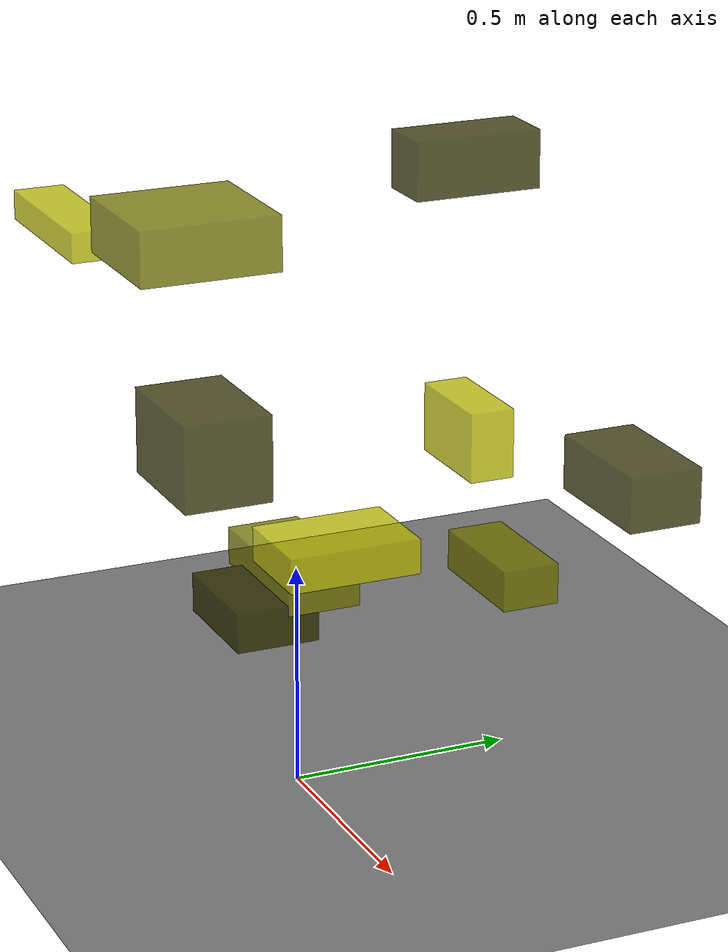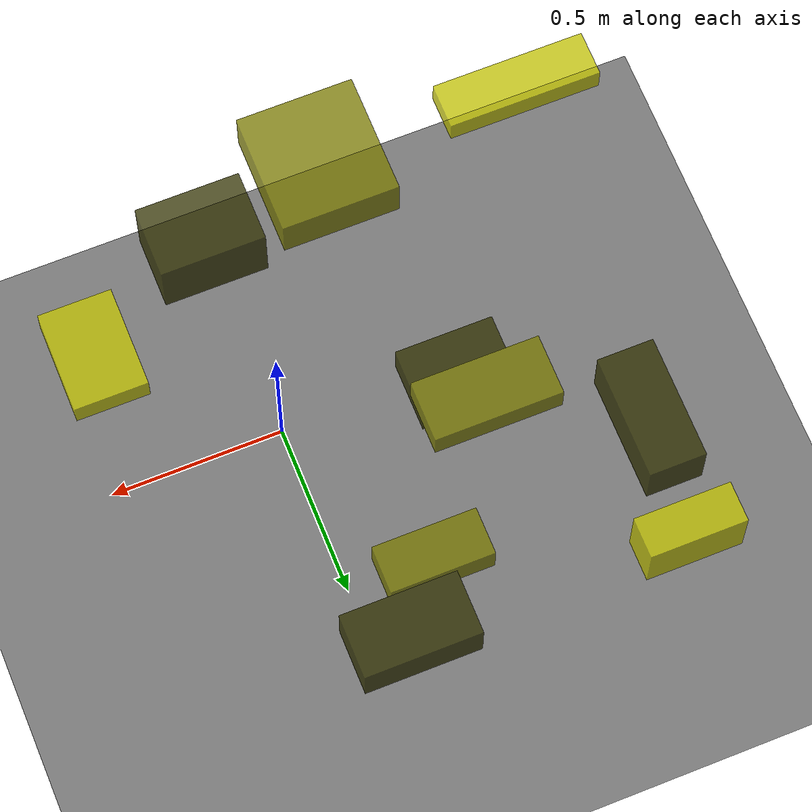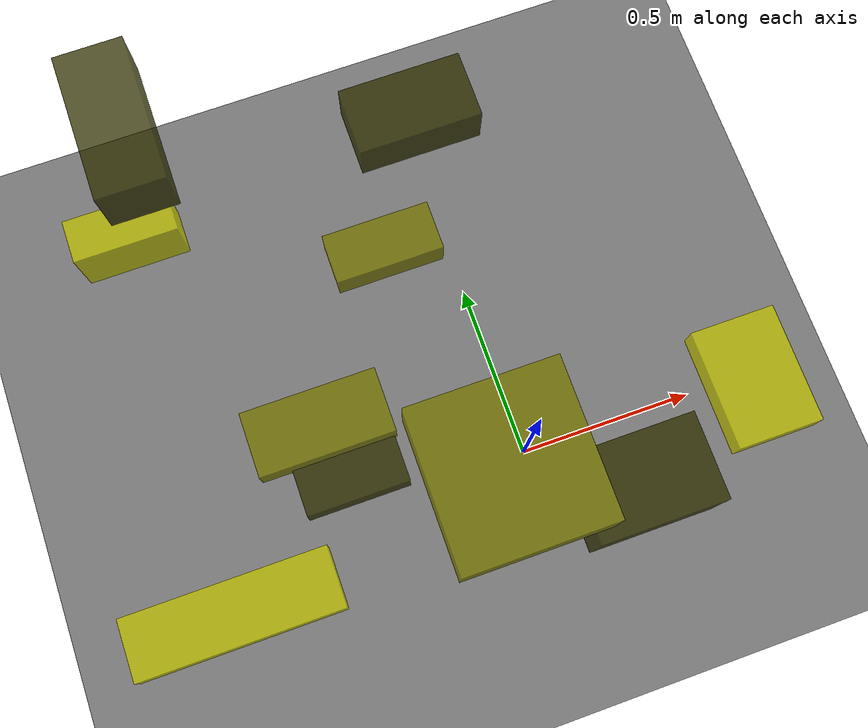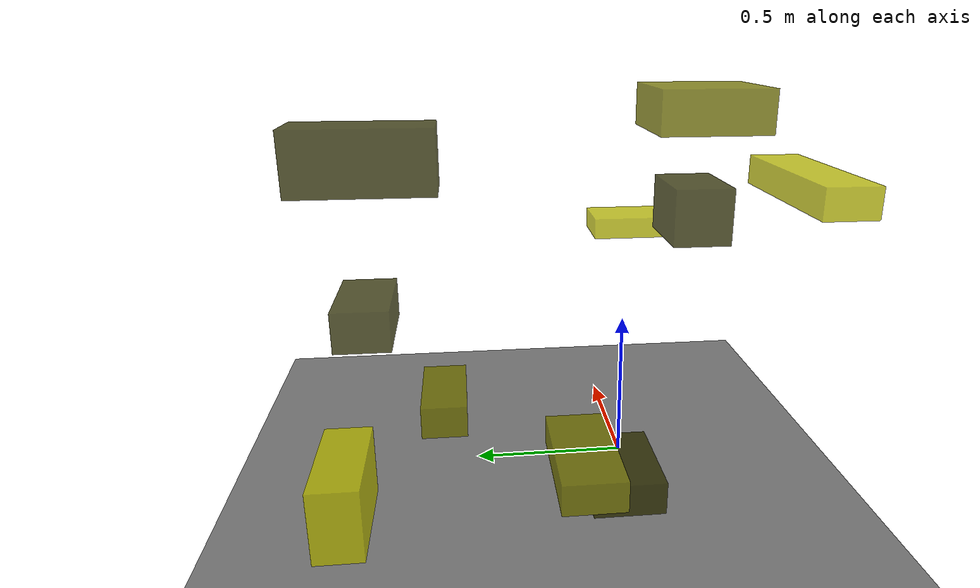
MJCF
<?xml version="1.0"?>
<mujoco model="obstacle_scene">
  <compiler angle="radian" coordinate="local"/>
  <option timestep="0.001" gravity="0 0 -9.81"/>

  <asset>
    <material name="obstacle_mat" rgba="0.8 0.8 0.0 0.8"/>
    <material name="ground_mat" rgba="0.5 0.5 0.5 1"/>
  </asset>

  <worldbody>
    <!-- Ground plane -->
    <geom name="ground" type="plane" size="3 3 0.1" material="ground_mat"/>

    <!-- Obstacles -->
    <body name="obstacle_0" pos="-0.699911 0.735377 1.166976">
      <geom name="obs_0" type="box" size="0.072401 0.158946 0.071290" rgba="0.2 0.2 0.0 0.8"/>
    </body>
    <body name="obstacle_1" pos="-0.205255 0.600951 0.333881">
      <geom name="obs_1" type="box" size="0.147077 0.067709 0.048199" rgba="0.5 0.5 0.0 0.8"/>
    </body>
    <body name="obstacle_2" pos="-0.761740 -0.237081 1.103462">
      <geom name="obs_2" type="box" size="0.201968 0.060256 0.034342" rgba="0.8 0.8 0.0 0.8"/>
    </body>
    <body name="obstacle_3" pos="-0.043091 0.842579 0.567378">
      <geom name="obs_3" type="box" size="0.160414 0.088277 0.065745" rgba="0.2 0.2 0.0 0.8"/>
    </body>
    <body name="obstacle_4" pos="-0.519272 0.210623 0.282935">
      <geom name="obs_4" type="box" size="0.185571 0.088437 0.044974" rgba="0.5 0.5 0.0 0.8"/>
    </body>
    <body name="obstacle_5" pos="-0.830829 0.816017 0.434697">
      <geom name="obs_5" type="box" size="0.136118 0.056876 0.088636" rgba="0.8 0.8 0.0 0.8"/>
    </body>
    <body name="obstacle_6" pos="-0.480831 0.097812 0.213466">
      <geom name="obs_6" type="box" size="0.141476 0.100741 0.047516" rgba="0.2 0.2 0.0 0.8"/>
    </body>
    <body name="obstacle_7" pos="-0.200077 -0.165639 1.216719">
      <geom name="obs_7" type="box" size="0.151767 0.158399 0.061878" rgba="0.5 0.5 0.0 0.8"/>
    </body>
    <body name="obstacle_8" pos="0.451433 -0.103692 0.722563">
      <geom name="obs_8" type="box" size="0.100082 0.139871 0.037078" rgba="0.8 0.8 0.0 0.8"/>
    </body>
    <body name="obstacle_9" pos="0.094681 -0.246502 0.852034">
      <geom name="obs_9" type="box" size="0.140415 0.096361 0.094491" rgba="0.2 0.2 0.0 0.8"/>
    </body>
  </worldbody>
</mujoco>
